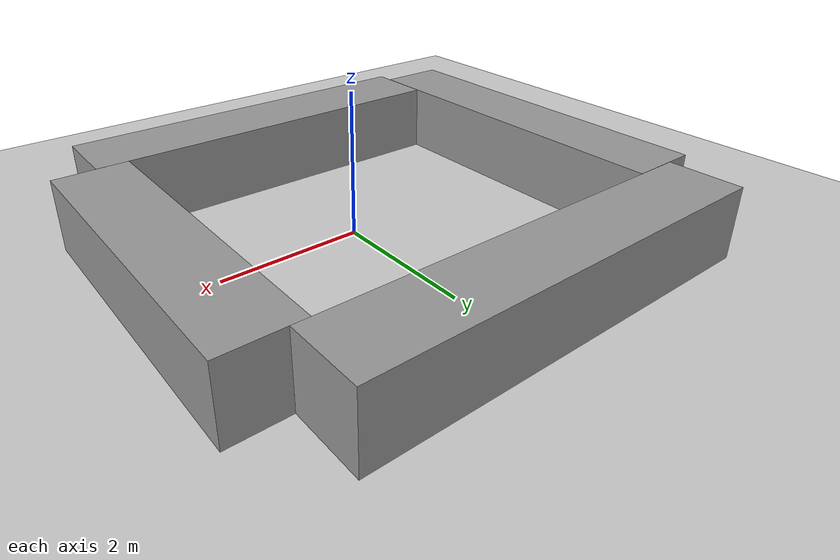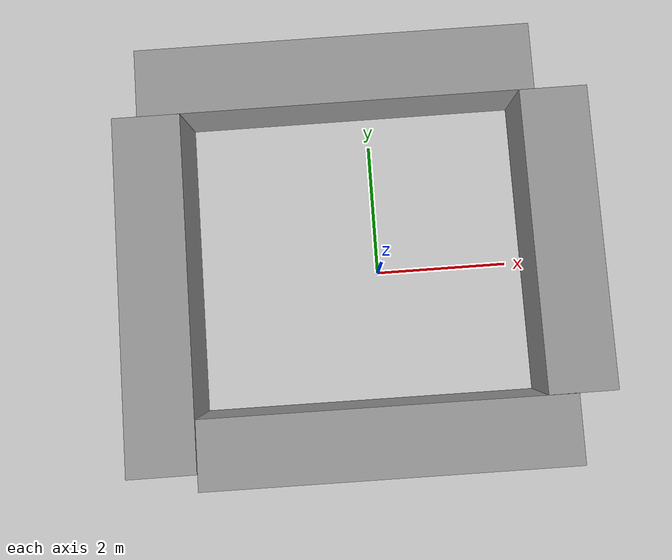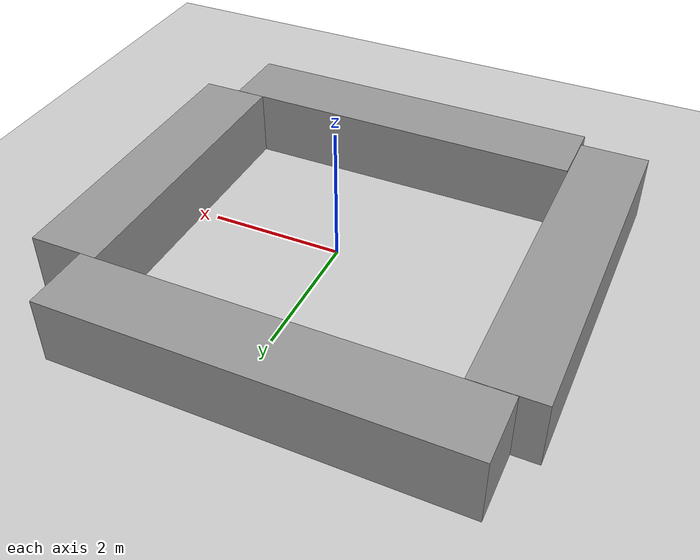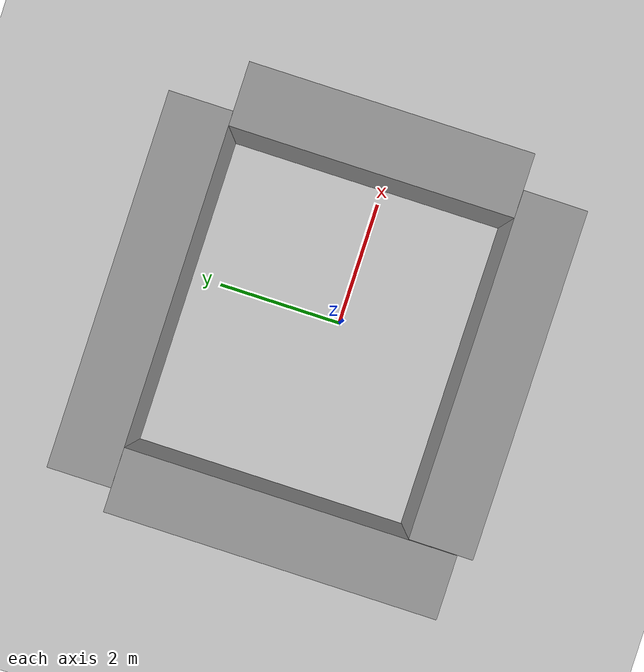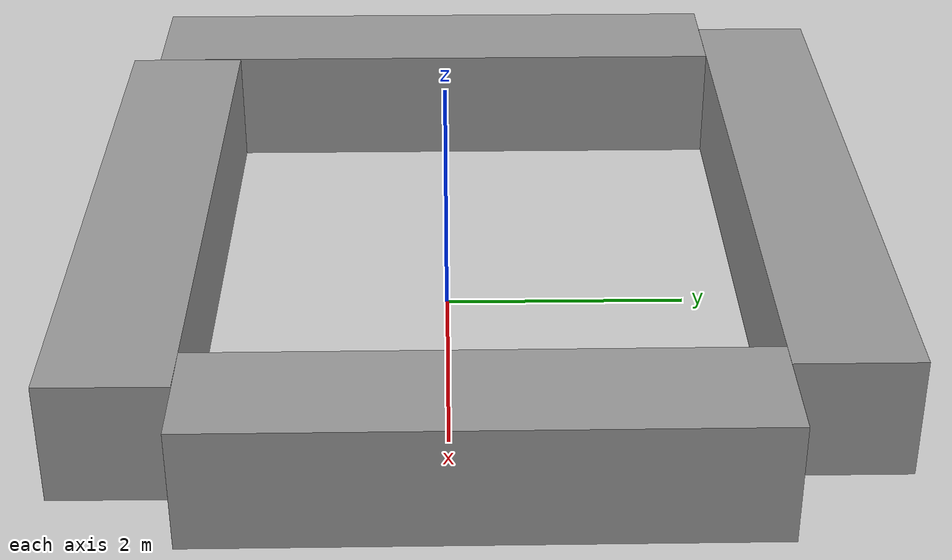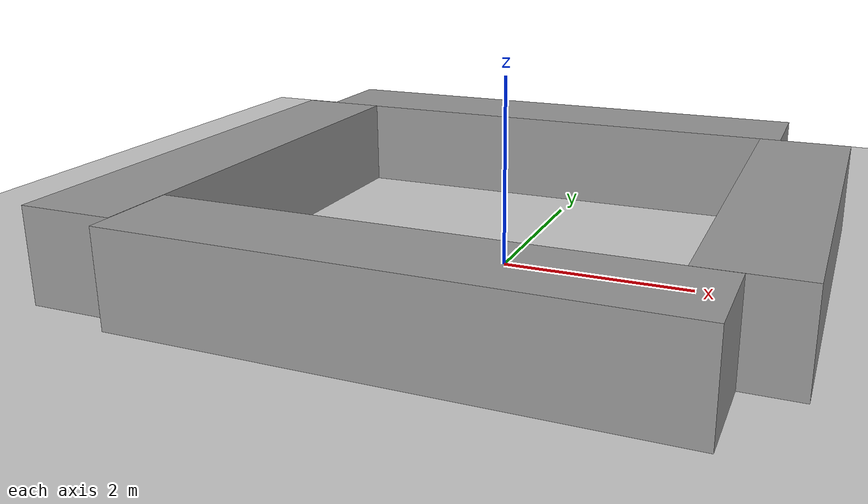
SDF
<sdf version="1.6">
 <world name="default">
  <light name="sun" type="directional">
   <pose>0 0 10 0 -0 0</pose>
   <diffuse>0.8 0.8 0.8 1</diffuse>
   <specular>0.2 0.2 0.2 1</specular>
   <attenuation>
    <range>1000</range>
    <constant>0.9</constant>
    <linear>0.01</linear>
    <quadratic>0.001</quadratic>
   </attenuation>
   <direction>-0.5 0.1 -0.9</direction>
  </light>
  <model name="ground_plane">
   <static>1</static>
   <link name="link">
    <collision name="collision">
     <geometry><plane><normal>0 0 1</normal><size>100 100</size></plane></geometry>
     <surface>
      <contact><collide_bitmask>65535</collide_bitmask></contact>
      <friction><ode><mu>100</mu><mu2>50</mu2></ode></friction>
     </surface>
    </collision>
    <visual name="visual">
     <cast_shadows>0</cast_shadows>
     <geometry><plane><normal>0 0 1</normal><size>100 100</size></plane></geometry>
     <material>
      <script><uri>file://media/materials/scripts/gazebo.material</uri><name>Gazebo/Grey</name></script>
     </material>
    </visual>
   </link>
  </model>
  <gravity>0 0 -9.8</gravity>
  <magnetic_field>6e-06 2.3e-05 -4.2e-05</magnetic_field>
  <atmosphere type="adiabatic"/>
  <physics name="default_physics" default="0" type="ode">
   <max_step_size>0.001</max_step_size>
   <real_time_factor>1</real_time_factor>
   <real_time_update_rate>1000</real_time_update_rate>
  </physics>
  <scene><ambient>0.4 0.4 0.4 1</ambient><background>0.7 0.7 0.7 1</background><shadows>1</shadows></scene>
  <audio><device>default</device></audio>
  <spherical_coordinates>
   <surface_model>EARTH_WGS84</surface_model>
   <latitude_deg>0</latitude_deg>
   <longitude_deg>0</longitude_deg>
   <elevation>0</elevation>
   <heading_deg>0</heading_deg>
  </spherical_coordinates>
  <model name="unit_box">
   <pose>2.74248 0.259514 0.499994 -2e-06 3e-06 0.001167</pose>
   <link name="link">
    <inertial>
     <mass>1</mass>
     <inertia>
      <ixx>0.166667</ixx>
      <ixy>0</ixy>
      <ixz>0</ixz>
      <iyy>0.166667</iyy>
      <iyz>0</iyz>
      <izz>0.166667</izz>
     </inertia>
    </inertial>
    <collision name="collision"><geometry><box><size>1 4.43732 1</size></box></geometry></collision>
    <visual name="visual">
     <geometry><box><size>1 4.43732 1</size></box></geometry>
     <material>
      <script><name>Gazebo/Grey</name><uri>file://media/materials/scripts/gazebo.material</uri></script>
     </material>
    </visual>
   </link>
  </model>
  <model name="unit_box_0">
   <pose>-0.03569 -2.45019 0.499996 -3e-06 -1e-06 -0.004353</pose>
   <link name="link">
    <inertial>
     <mass>1</mass>
     <inertia>
      <ixx>0.166667</ixx>
      <ixy>0</ixy>
      <ixz>0</ixz>
      <iyy>0.166667</iyy>
      <iyz>0</iyz>
      <izz>0.166667</izz>
     </inertia>
    </inertial>
    <collision name="collision"><geometry><box><size>5.42875 1 1</size></box></geometry></collision>
    <visual name="visual">
     <geometry><box><size>5.42875 1 1</size></box></geometry>
     <material>
      <script><name>Gazebo/Grey</name><uri>file://media/materials/scripts/gazebo.material</uri></script>
     </material>
    </visual>
   </link>
  </model>
  <model name="unit_box_1">
   <pose>-3.25749 -0.110917 0.497521 -0.000959 -0 -1.7e-05</pose>
   <link name="link">
    <inertial>
     <mass>1</mass>
     <inertia>
      <ixx>0.166667</ixx>
      <ixy>0</ixy>
      <ixz>0</ixz>
      <iyy>0.166667</iyy>
      <iyz>0</iyz>
      <izz>0.166667</izz>
     </inertia>
    </inertial>
    <collision name="collision"><geometry><box><size>1 5.17335 1</size></box></geometry></collision>
    <visual name="visual">
     <geometry><box><size>1 5.17335 1</size></box></geometry>
     <material>
      <script><name>Gazebo/Grey</name><uri>file://media/materials/scripts/gazebo.material</uri></script>
     </material>
    </visual>
   </link>
  </model>
  <model name="unit_box_2">
   <pose>-0.459872 2.97783 0.495681 0 -0.001476 9.5e-05</pose>
   <link name="link">
    <inertial>
     <mass>1</mass>
     <inertia>
      <ixx>0.166667</ixx>
      <ixy>0</ixy>
      <ixz>0</ixz>
      <iyy>0.166667</iyy>
      <iyz>0</iyz>
      <izz>0.166667</izz>
     </inertia>
    </inertial>
    <collision name="collision"><geometry><box><size>5.85356 1 1</size></box></geometry></collision>
    <visual name="visual">
     <geometry><box><size>5.85356 1 1</size></box></geometry>
     <material>
      <script><name>Gazebo/Grey</name><uri>file://media/materials/scripts/gazebo.material</uri></script>
     </material>
    </visual>
   </link>
  </model>
 </world>
</sdf>
